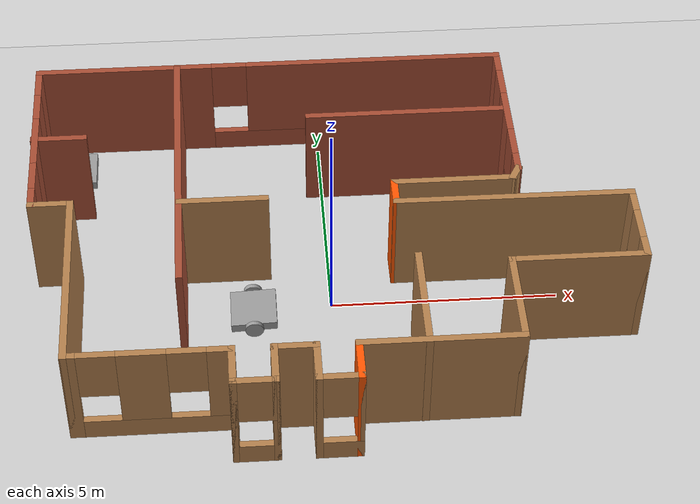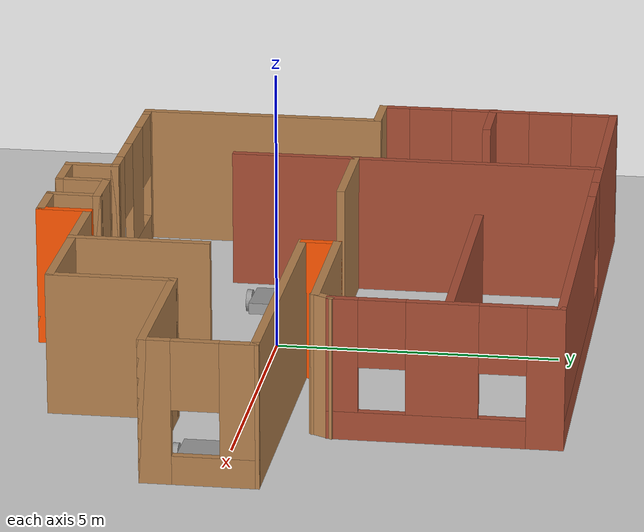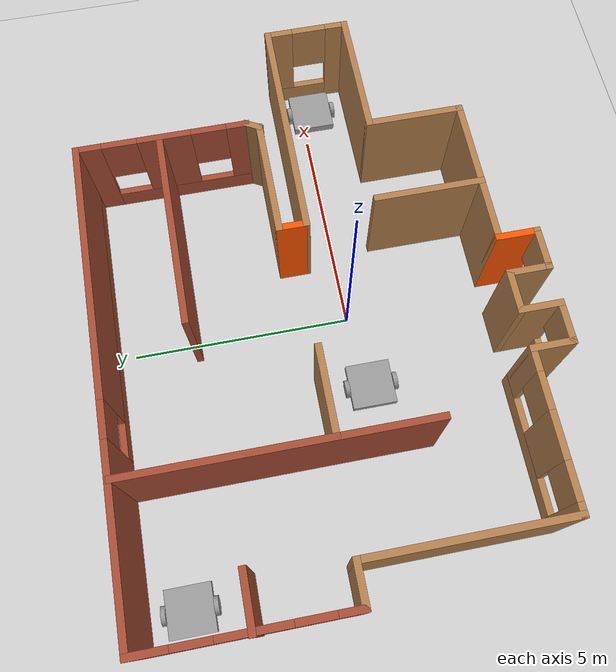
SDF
<sdf version="1.6">
 <world name="default">
  <plugin name="hello" filename="libhello.so"/>
  <light name="sun" type="directional">
   <pose>0 0 10 0 -0 0</pose>
   <diffuse>0.8 0.8 0.8 1</diffuse>
   <specular>0.2 0.2 0.2 1</specular>
   <attenuation>
    <range>1000</range>
    <constant>0.9</constant>
    <linear>0.01</linear>
    <quadratic>0.001</quadratic>
   </attenuation>
   <direction>-0.5 0.1 -0.9</direction>
  </light>
  <model name="ground_plane">
   <static>1</static>
   <link name="link">
    <collision name="collision">
     <geometry><plane><normal>0 0 1</normal><size>100 100</size></plane></geometry>
     <surface>
      <contact><collide_bitmask>65535</collide_bitmask></contact>
      <friction><ode><mu>100</mu><mu2>50</mu2></ode></friction>
     </surface>
    </collision>
    <visual name="visual">
     <cast_shadows>0</cast_shadows>
     <geometry><plane><normal>0 0 1</normal><size>100 100</size></plane></geometry>
     <material>
      <script><uri>file://media/materials/scripts/gazebo.material</uri><name>Gazebo/Grey</name></script>
     </material>
    </visual>
   </link>
  </model>
  <gravity>0 0 -9.8</gravity>
  <magnetic_field>6e-06 2.3e-05 -4.2e-05</magnetic_field>
  <atmosphere type="adiabatic"/>
  <physics name="default_physics" default="0" type="ode">
   <max_step_size>0.001</max_step_size>
   <real_time_factor>1</real_time_factor>
   <real_time_update_rate>1000</real_time_update_rate>
  </physics>
  <scene><ambient>0.4 0.4 0.4 1</ambient><background>0.7 0.7 0.7 1</background><shadows>1</shadows></scene>
  <spherical_coordinates>
   <surface_model>EARTH_WGS84</surface_model>
   <latitude_deg>0</latitude_deg>
   <longitude_deg>0</longitude_deg>
   <elevation>0</elevation>
   <heading_deg>0</heading_deg>
  </spherical_coordinates>
  <model name="Building">
   <pose>0.056223 0.63011 0 0 -0 0</pose>
   <link name="Wall_10">
    <collision name="Wall_10_Collision">
     <geometry><box><size>1 0.15 2.5</size></box></geometry>
     <pose>0 0 1.25 0 -0 0</pose>
    </collision>
    <visual name="Wall_10_Visual">
     <pose>0 0 1.25 0 -0 0</pose>
     <geometry><box><size>1 0.15 2.5</size></box></geometry>
     <material>
      <script><uri>file://media/materials/scripts/gazebo.material</uri><name>Gazebo/Grey</name></script>
      <ambient>1 0.333333 0 1</ambient>
     </material>
     <meta><layer>0</layer></meta>
    </visual>
    <pose>0.287386 -4.35 0 0 -0 1.5708</pose>
   </link>
   <link name="Wall_12">
    <collision name="Wall_12_Collision">
     <geometry><box><size>3.5 0.15 2.5</size></box></geometry>
     <pose>0 0 1.25 0 -0 0</pose>
    </collision>
    <visual name="Wall_12_Visual">
     <pose>0 0 1.25 0 -0 0</pose>
     <geometry><box><size>3.5 0.15 2.5</size></box></geometry>
     <material>
      <script><uri>file://media/materials/scripts/gazebo.material</uri><name>Gazebo/Wood</name></script>
      <ambient>1 0.333333 0 1</ambient>
     </material>
     <meta><layer>0</layer></meta>
    </visual>
    <pose>1.96239 -3.925 0 0 -0 0</pose>
   </link>
   <link name="Wall_13">
    <collision name="Wall_13_Collision">
     <geometry><box><size>2.25 0.15 2.5</size></box></geometry>
     <pose>0 0 1.25 0 -0 0</pose>
    </collision>
    <visual name="Wall_13_Visual">
     <pose>0 0 1.25 0 -0 0</pose>
     <geometry><box><size>2.25 0.15 2.5</size></box></geometry>
     <material>
      <script><uri>file://media/materials/scripts/gazebo.material</uri><name>Gazebo/Wood</name></script>
      <ambient>1 0.333333 0 1</ambient>
     </material>
     <meta><layer>0</layer></meta>
    </visual>
    <pose>3.63739 -2.875 0 0 -0 1.5708</pose>
   </link>
   <link name="Wall_14">
    <collision name="Wall_14_Collision">
     <geometry><box><size>3 0.15 2.5</size></box></geometry>
     <pose>0 0 1.25 0 -0 0</pose>
    </collision>
    <visual name="Wall_14_Visual">
     <pose>0 0 1.25 0 -0 0</pose>
     <geometry><box><size>3 0.15 2.5</size></box></geometry>
     <material>
      <script><uri>file://media/materials/scripts/gazebo.material</uri><name>Gazebo/Wood</name></script>
      <ambient>1 0.333333 0 1</ambient>
     </material>
     <meta><layer>0</layer></meta>
    </visual>
    <pose>5.06239 -1.825 0 0 -0 0</pose>
   </link>
   <link name="Wall_15">
    <pose>6.48739 -0.9 0 0 -0 1.5708</pose>
    <visual name="Wall_15_Visual_0">
     <pose>-0.725722 0 1.25 0 -0 0</pose>
     <geometry><box><size>0.548555 0.15 2.5</size></box></geometry>
     <material>
      <script><uri>file://media/materials/scripts/gazebo.material</uri><name>Gazebo/Wood</name></script>
      <ambient>1 0.333333 0 1</ambient>
     </material>
     <meta><layer>0</layer></meta>
    </visual>
    <collision name="Wall_15_Collision_0">
     <geometry><box><size>0.548555 0.15 2.5</size></box></geometry>
     <pose>-0.725722 0 1.25 0 -0 0</pose>
    </collision>
    <visual name="Wall_15_Visual_1">
     <pose>0.274278 0 0.25 0 -0 0</pose>
     <geometry><box><size>1.45145 0.15 0.5</size></box></geometry>
     <material>
      <script><uri>file://media/materials/scripts/gazebo.material</uri><name>Gazebo/Wood</name></script>
      <ambient>1 0.333333 0 1</ambient>
     </material>
     <meta><layer>0</layer></meta>
    </visual>
    <collision name="Wall_15_Collision_1">
     <geometry><box><size>1.45145 0.15 0.5</size></box></geometry>
     <pose>0.274278 0 0.25 0 -0 0</pose>
    </collision>
    <visual name="Wall_15_Visual_2">
     <pose>0.674278 0 1.5 0 -0 0</pose>
     <geometry><box><size>0.651445 0.15 2</size></box></geometry>
     <material>
      <script><uri>file://media/materials/scripts/gazebo.material</uri><name>Gazebo/Wood</name></script>
      <ambient>1 0.333333 0 1</ambient>
     </material>
     <meta><layer>0</layer></meta>
    </visual>
    <collision name="Wall_15_Collision_2">
     <geometry><box><size>0.651445 0.15 2</size></box></geometry>
     <pose>0.674278 0 1.5 0 -0 0</pose>
    </collision>
    <visual name="Wall_15_Visual_3">
     <pose>-0.051445 0 1.9 0 -0 0</pose>
     <geometry><box><size>0.8 0.15 1.2</size></box></geometry>
     <material>
      <script><uri>file://media/materials/scripts/gazebo.material</uri><name>Gazebo/Wood</name></script>
      <ambient>1 0.333333 0 1</ambient>
     </material>
     <meta><layer>0</layer></meta>
    </visual>
    <collision name="Wall_15_Collision_3">
     <geometry><box><size>0.8 0.15 1.2</size></box></geometry>
     <pose>-0.051445 0 1.9 0 -0 0</pose>
    </collision>
   </link>
   <link name="Wall_16">
    <collision name="Wall_16_Collision">
     <geometry><box><size>5.25 0.15 2.5</size></box></geometry>
     <pose>0 0 1.25 0 -0 0</pose>
    </collision>
    <visual name="Wall_16_Visual">
     <pose>0 0 1.25 0 -0 0</pose>
     <geometry><box><size>5.25 0.15 2.5</size></box></geometry>
     <material>
      <script><uri>file://media/materials/scripts/gazebo.material</uri><name>Gazebo/Wood</name></script>
      <ambient>1 0.333333 0 1</ambient>
     </material>
     <meta><layer>0</layer></meta>
    </visual>
    <pose>3.93739 0.0365 0 0 -0 3.13708</pose>
   </link>
   <link name="Wall_2">
    <collision name="Wall_2_Collision">
     <geometry><box><size>4.5 0.15 2.5</size></box></geometry>
     <pose>0 0 1.25 0 -0 0</pose>
    </collision>
    <visual name="Wall_2_Visual">
     <pose>0 0 1.25 0 -0 0</pose>
     <geometry><box><size>4.5 0.15 2.5</size></box></geometry>
     <material>
      <script><uri>file://media/materials/scripts/gazebo.material</uri><name>Gazebo/Wood</name></script>
      <ambient>0 0 0.498039 1</ambient>
     </material>
     <meta><layer>0</layer></meta>
    </visual>
    <pose>-5.61261 -1.75 0 0 0 -1.5708</pose>
   </link>
   <link name="Wall_21">
    <collision name="Wall_21_Collision">
     <geometry><box><size>0.75 0.15 2.5</size></box></geometry>
     <pose>0 0 1.25 0 -0 0</pose>
    </collision>
    <visual name="Wall_21_Visual">
     <pose>0 0 1.25 0 -0 0</pose>
     <geometry><box><size>0.75 0.15 2.5</size></box></geometry>
     <material>
      <script><uri>file://media/materials/scripts/gazebo.material</uri><name>Gazebo/Grey</name></script>
      <ambient>1 0.333333 0 1</ambient>
     </material>
     <meta><layer>0</layer></meta>
    </visual>
    <pose>1.38739 0.348 0 0 -0 1.5708</pose>
   </link>
   <link name="Wall_25">
    <collision name="Wall_25_Collision">
     <geometry><box><size>1 0.15 2.5</size></box></geometry>
     <pose>0 0 1.25 0 -0 0</pose>
    </collision>
    <visual name="Wall_25_Visual">
     <pose>0 0 1.25 0 -0 0</pose>
     <geometry><box><size>1 0.15 2.5</size></box></geometry>
     <material>
      <script><uri>file://media/materials/scripts/gazebo.material</uri><name>Gazebo/Wood</name></script>
      <ambient>0.996078 0.47451 0.0196078 1</ambient>
     </material>
     <meta><layer>0</layer></meta>
    </visual>
    <pose>-6.03761 0.425 0 0 -0 3.14159</pose>
   </link>
   <link name="Wall_26">
    <pose>-6.46261 2.6 0 0 -0 1.5708</pose>
    <visual name="Wall_26_Visual_0">
     <pose>-1.95691 0 1.25 0 -0 0</pose>
     <geometry><box><size>0.586172 0.15 2.5</size></box></geometry>
     <material>
      <script><uri>file://media/materials/scripts/gazebo.material</uri><name>Gazebo/Bricks</name></script>
      <ambient>0 0 0.498039 1</ambient>
     </material>
     <meta><layer>0</layer></meta>
    </visual>
    <collision name="Wall_26_Collision_0">
     <geometry><box><size>0.586172 0.15 2.5</size></box></geometry>
     <pose>-1.95691 0 1.25 0 -0 0</pose>
    </collision>
    <visual name="Wall_26_Visual_1">
     <pose>0.293086 0 0.25 0 -0 0</pose>
     <geometry><box><size>3.91383 0.15 0.5</size></box></geometry>
     <material>
      <script><uri>file://media/materials/scripts/gazebo.material</uri><name>Gazebo/Bricks</name></script>
      <ambient>0 0 0.498039 1</ambient>
     </material>
     <meta><layer>0</layer></meta>
    </visual>
    <collision name="Wall_26_Collision_1">
     <geometry><box><size>3.91383 0.15 0.5</size></box></geometry>
     <pose>0.293086 0 0.25 0 -0 0</pose>
    </collision>
    <visual name="Wall_26_Visual_2">
     <pose>-0.133319 0 1.5 0 -0 0</pose>
     <geometry><box><size>1.46102 0.15 2</size></box></geometry>
     <material>
      <script><uri>file://media/materials/scripts/gazebo.material</uri><name>Gazebo/Bricks</name></script>
      <ambient>0 0 0.498039 1</ambient>
     </material>
     <meta><layer>0</layer></meta>
    </visual>
    <collision name="Wall_26_Collision_2">
     <geometry><box><size>1.46102 0.15 2</size></box></geometry>
     <pose>-0.133319 0 1.5 0 -0 0</pose>
    </collision>
    <visual name="Wall_26_Visual_3">
     <pose>1.8236 0 1.5 0 -0 0</pose>
     <geometry><box><size>0.852811 0.15 2</size></box></geometry>
     <material>
      <script><uri>file://media/materials/scripts/gazebo.material</uri><name>Gazebo/Bricks</name></script>
      <ambient>0 0 0.498039 1</ambient>
     </material>
     <meta><layer>0</layer></meta>
    </visual>
    <collision name="Wall_26_Collision_3">
     <geometry><box><size>0.852811 0.15 2</size></box></geometry>
     <pose>1.8236 0 1.5 0 -0 0</pose>
    </collision>
    <visual name="Wall_26_Visual_4">
     <pose>-1.26383 0 1.9 0 -0 0</pose>
     <geometry><box><size>0.8 0.15 1.2</size></box></geometry>
     <material>
      <script><uri>file://media/materials/scripts/gazebo.material</uri><name>Gazebo/Bricks</name></script>
      <ambient>0 0 0.498039 1</ambient>
     </material>
     <meta><layer>0</layer></meta>
    </visual>
    <collision name="Wall_26_Collision_4">
     <geometry><box><size>0.8 0.15 1.2</size></box></geometry>
     <pose>-1.26383 0 1.9 0 -0 0</pose>
    </collision>
    <visual name="Wall_26_Visual_5">
     <pose>0.997189 0 1.9 0 -0 0</pose>
     <geometry><box><size>0.8 0.15 1.2</size></box></geometry>
     <material>
      <script><uri>file://media/materials/scripts/gazebo.material</uri><name>Gazebo/Bricks</name></script>
      <ambient>0 0 0.498039 1</ambient>
     </material>
     <meta><layer>0</layer></meta>
    </visual>
    <collision name="Wall_26_Collision_5">
     <geometry><box><size>0.8 0.15 1.2</size></box></geometry>
     <pose>0.997189 0 1.9 0 -0 0</pose>
    </collision>
   </link>
   <link name="Wall_27">
    <pose>-1.16261 4.775 0 0 -0 0</pose>
    <visual name="Wall_27_Visual_0">
     <pose>-3.35553 0 1.25 0 -0 0</pose>
     <geometry><box><size>4.03895 0.15 2.5</size></box></geometry>
     <material>
      <script><uri>file://media/materials/scripts/gazebo.material</uri><name>Gazebo/Bricks</name></script>
      <ambient>0.996078 0.47451 0.0196078 1</ambient>
     </material>
     <meta><layer>0</layer></meta>
    </visual>
    <collision name="Wall_27_Collision_0">
     <geometry><box><size>4.03895 0.15 2.5</size></box></geometry>
     <pose>-3.35553 0 1.25 0 -0 0</pose>
    </collision>
    <visual name="Wall_27_Visual_1">
     <pose>2.01947 0 0.25 0 -0 0</pose>
     <geometry><box><size>6.71105 0.15 0.5</size></box></geometry>
     <material>
      <script><uri>file://media/materials/scripts/gazebo.material</uri><name>Gazebo/Bricks</name></script>
      <ambient>0.996078 0.47451 0.0196078 1</ambient>
     </material>
     <meta><layer>0</layer></meta>
    </visual>
    <collision name="Wall_27_Collision_1">
     <geometry><box><size>6.71105 0.15 0.5</size></box></geometry>
     <pose>2.01947 0 0.25 0 -0 0</pose>
    </collision>
    <visual name="Wall_27_Visual_2">
     <pose>2.41947 0 1.5 0 -0 0</pose>
     <geometry><box><size>5.91105 0.15 2</size></box></geometry>
     <material>
      <script><uri>file://media/materials/scripts/gazebo.material</uri><name>Gazebo/Bricks</name></script>
      <ambient>0.996078 0.47451 0.0196078 1</ambient>
     </material>
     <meta><layer>0</layer></meta>
    </visual>
    <collision name="Wall_27_Collision_2">
     <geometry><box><size>5.91105 0.15 2</size></box></geometry>
     <pose>2.41947 0 1.5 0 -0 0</pose>
    </collision>
    <visual name="Wall_27_Visual_3">
     <pose>-0.936052 0 1.9 0 -0 0</pose>
     <geometry><box><size>0.8 0.15 1.2</size></box></geometry>
     <material>
      <script><uri>file://media/materials/scripts/gazebo.material</uri><name>Gazebo/Bricks</name></script>
      <ambient>0.996078 0.47451 0.0196078 1</ambient>
     </material>
     <meta><layer>0</layer></meta>
    </visual>
    <collision name="Wall_27_Collision_3">
     <geometry><box><size>0.8 0.15 1.2</size></box></geometry>
     <pose>-0.936052 0 1.9 0 -0 0</pose>
    </collision>
   </link>
   <link name="Wall_28">
    <pose>4.13739 2.85 0 0 0 -1.5708</pose>
    <visual name="Wall_28_Visual_0">
     <pose>-1.67999 0 1.25 0 -0 0</pose>
     <geometry><box><size>0.640009 0.15 2.5</size></box></geometry>
     <material>
      <script><uri>file://media/materials/scripts/gazebo.material</uri><name>Gazebo/Bricks</name></script>
      <ambient>1 0.333333 0 1</ambient>
     </material>
     <meta><layer>0</layer></meta>
    </visual>
    <collision name="Wall_28_Collision_0">
     <geometry><box><size>0.640009 0.15 2.5</size></box></geometry>
     <pose>-1.67999 0 1.25 0 -0 0</pose>
    </collision>
    <visual name="Wall_28_Visual_1">
     <pose>0.320005 0 0.25 0 -0 0</pose>
     <geometry><box><size>3.35999 0.15 0.5</size></box></geometry>
     <material>
      <script><uri>file://media/materials/scripts/gazebo.material</uri><name>Gazebo/Bricks</name></script>
      <ambient>1 0.333333 0 1</ambient>
     </material>
     <meta><layer>0</layer></meta>
    </visual>
    <collision name="Wall_28_Collision_1">
     <geometry><box><size>3.35999 0.15 0.5</size></box></geometry>
     <pose>0.320005 0 0.25 0 -0 0</pose>
    </collision>
    <visual name="Wall_28_Visual_2">
     <pose>0.050817 0 1.5 0 -0 0</pose>
     <geometry><box><size>1.22161 0.15 2</size></box></geometry>
     <material>
      <script><uri>file://media/materials/scripts/gazebo.material</uri><name>Gazebo/Bricks</name></script>
      <ambient>1 0.333333 0 1</ambient>
     </material>
     <meta><layer>0</layer></meta>
    </visual>
    <collision name="Wall_28_Collision_2">
     <geometry><box><size>1.22161 0.15 2</size></box></geometry>
     <pose>0.050817 0 1.5 0 -0 0</pose>
    </collision>
    <visual name="Wall_28_Visual_3">
     <pose>1.73081 0 1.5 0 -0 0</pose>
     <geometry><box><size>0.538376 0.15 2</size></box></geometry>
     <material>
      <script><uri>file://media/materials/scripts/gazebo.material</uri><name>Gazebo/Bricks</name></script>
      <ambient>1 0.333333 0 1</ambient>
     </material>
     <meta><layer>0</layer></meta>
    </visual>
    <collision name="Wall_28_Collision_3">
     <geometry><box><size>0.538376 0.15 2</size></box></geometry>
     <pose>1.73081 0 1.5 0 -0 0</pose>
    </collision>
    <visual name="Wall_28_Visual_4">
     <pose>-0.959991 0 1.9 0 -0 0</pose>
     <geometry><box><size>0.8 0.15 1.2</size></box></geometry>
     <material>
      <script><uri>file://media/materials/scripts/gazebo.material</uri><name>Gazebo/Bricks</name></script>
      <ambient>1 0.333333 0 1</ambient>
     </material>
     <meta><layer>0</layer></meta>
    </visual>
    <collision name="Wall_28_Collision_4">
     <geometry><box><size>0.8 0.15 1.2</size></box></geometry>
     <pose>-0.959991 0 1.9 0 -0 0</pose>
    </collision>
    <visual name="Wall_28_Visual_5">
     <pose>1.06162 0 1.9 0 -0 0</pose>
     <geometry><box><size>0.8 0.15 1.2</size></box></geometry>
     <material>
      <script><uri>file://media/materials/scripts/gazebo.material</uri><name>Gazebo/Bricks</name></script>
      <ambient>1 0.333333 0 1</ambient>
     </material>
     <meta><layer>0</layer></meta>
    </visual>
    <collision name="Wall_28_Collision_5">
     <geometry><box><size>0.8 0.15 1.2</size></box></geometry>
     <pose>1.06162 0 1.9 0 -0 0</pose>
    </collision>
   </link>
   <link name="Wall_3">
    <pose>-3.93761 -3.925 0 0 -0 0</pose>
    <visual name="Wall_3_Visual_0">
     <pose>-1.59194 0 1.25 0 -0 0</pose>
     <geometry><box><size>0.316126 0.15 2.5</size></box></geometry>
     <material>
      <script><uri>file://media/materials/scripts/gazebo.material</uri><name>Gazebo/Wood</name></script>
      <ambient>0 0 0.498039 1</ambient>
     </material>
     <meta><layer>0</layer></meta>
    </visual>
    <collision name="Wall_3_Collision_0">
     <geometry><box><size>0.316126 0.15 2.5</size></box></geometry>
     <pose>-1.59194 0 1.25 0 -0 0</pose>
    </collision>
    <visual name="Wall_3_Visual_1">
     <pose>0.158063 0 0.25 0 -0 0</pose>
     <geometry><box><size>3.18387 0.15 0.5</size></box></geometry>
     <material>
      <script><uri>file://media/materials/scripts/gazebo.material</uri><name>Gazebo/Wood</name></script>
      <ambient>0 0 0.498039 1</ambient>
     </material>
     <meta><layer>0</layer></meta>
    </visual>
    <collision name="Wall_3_Collision_1">
     <geometry><box><size>3.18387 0.15 0.5</size></box></geometry>
     <pose>0.158063 0 0.25 0 -0 0</pose>
    </collision>
    <visual name="Wall_3_Visual_2">
     <pose>-0.129467 0 1.5 0 -0 0</pose>
     <geometry><box><size>1.00881 0.15 2</size></box></geometry>
     <material>
      <script><uri>file://media/materials/scripts/gazebo.material</uri><name>Gazebo/Wood</name></script>
      <ambient>0 0 0.498039 1</ambient>
     </material>
     <meta><layer>0</layer></meta>
    </visual>
    <collision name="Wall_3_Collision_2">
     <geometry><box><size>1.00881 0.15 2</size></box></geometry>
     <pose>-0.129467 0 1.5 0 -0 0</pose>
    </collision>
    <visual name="Wall_3_Visual_3">
     <pose>1.46247 0 1.5 0 -0 0</pose>
     <geometry><box><size>0.57506 0.15 2</size></box></geometry>
     <material>
      <script><uri>file://media/materials/scripts/gazebo.material</uri><name>Gazebo/Wood</name></script>
      <ambient>0 0 0.498039 1</ambient>
     </material>
     <meta><layer>0</layer></meta>
    </visual>
    <collision name="Wall_3_Collision_3">
     <geometry><box><size>0.57506 0.15 2</size></box></geometry>
     <pose>1.46247 0 1.5 0 -0 0</pose>
    </collision>
    <visual name="Wall_3_Visual_4">
     <pose>-1.03387 0 1.9 0 -0 0</pose>
     <geometry><box><size>0.8 0.15 1.2</size></box></geometry>
     <material>
      <script><uri>file://media/materials/scripts/gazebo.material</uri><name>Gazebo/Wood</name></script>
      <ambient>0 0 0.498039 1</ambient>
     </material>
     <meta><layer>0</layer></meta>
    </visual>
    <collision name="Wall_3_Collision_4">
     <geometry><box><size>0.8 0.15 1.2</size></box></geometry>
     <pose>-1.03387 0 1.9 0 -0 0</pose>
    </collision>
    <visual name="Wall_3_Visual_5">
     <pose>0.77494 0 1.9 0 -0 0</pose>
     <geometry><box><size>0.8 0.15 1.2</size></box></geometry>
     <material>
      <script><uri>file://media/materials/scripts/gazebo.material</uri><name>Gazebo/Wood</name></script>
      <ambient>0 0 0.498039 1</ambient>
     </material>
     <meta><layer>0</layer></meta>
    </visual>
    <collision name="Wall_3_Collision_5">
     <geometry><box><size>0.8 0.15 1.2</size></box></geometry>
     <pose>0.77494 0 1.9 0 -0 0</pose>
    </collision>
   </link>
   <link name="Wall_30">
    <collision name="Wall_30_Collision">
     <geometry><box><size>2.75 0.15 2.5</size></box></geometry>
     <pose>0 0 1.25 0 -0 0</pose>
    </collision>
    <visual name="Wall_30_Visual">
     <pose>0 0 1.25 0 -0 0</pose>
     <geometry><box><size>2.75 0.15 2.5</size></box></geometry>
     <material>
      <script><uri>file://media/materials/scripts/gazebo.material</uri><name>Gazebo/Wood</name></script>
      <ambient>1 0.333333 0 1</ambient>
     </material>
     <meta><layer>0</layer></meta>
    </visual>
    <pose>2.68739 0.648 0 0 -0 0</pose>
   </link>
   <link name="Wall_31">
    <collision name="Wall_31_Collision">
     <geometry><box><size>0.465006 0.15 2.5</size></box></geometry>
     <pose>0 0 1.25 0 -0 0</pose>
    </collision>
    <visual name="Wall_31_Visual">
     <pose>0 0 1.25 0 -0 0</pose>
     <geometry><box><size>0.465006 0.15 2.5</size></box></geometry>
     <material>
      <script><uri>file://media/materials/scripts/gazebo.material</uri><name>Gazebo/Wood</name></script>
      <ambient>1 0.333333 0 1</ambient>
     </material>
     <meta><layer>0</layer></meta>
    </visual>
    <pose>4.06239 0.7865 0 0 -0 1.07449</pose>
   </link>
   <link name="Wall_33">
    <collision name="Wall_33_Collision">
     <geometry><box><size>6.75 0.15 2.5</size></box></geometry>
     <pose>0 0 1.25 0 -0 0</pose>
    </collision>
    <visual name="Wall_33_Visual">
     <pose>0 0 1.25 0 -0 0</pose>
     <geometry><box><size>6.75 0.15 2.5</size></box></geometry>
     <material>
      <script><uri>file://media/materials/scripts/gazebo.material</uri><name>Gazebo/Bricks</name></script>
      <ambient>0 0 0.498039 1</ambient>
     </material>
     <meta><layer>0</layer></meta>
    </visual>
    <pose>-3.29568 1.441 0 0 0 -1.5708</pose>
   </link>
   <link name="Wall_35">
    <collision name="Wall_35_Collision">
     <geometry><box><size>4.5 0.15 2.5</size></box></geometry>
     <pose>0 0 1.25 0 -0 0</pose>
    </collision>
    <visual name="Wall_35_Visual">
     <pose>0 0 1.25 0 -0 0</pose>
     <geometry><box><size>4.5 0.15 2.5</size></box></geometry>
     <material>
      <script><uri>file://media/materials/scripts/gazebo.material</uri><name>Gazebo/Bricks</name></script>
      <ambient>0 0 0.498039 1</ambient>
     </material>
     <meta><layer>0</layer></meta>
    </visual>
    <pose>1.83195 2.90558 0 0 -0 0</pose>
   </link>
   <link name="Wall_37">
    <collision name="Wall_37_Collision">
     <geometry><box><size>1.25 0.15 2.5</size></box></geometry>
     <pose>0 0 1.25 0 -0 0</pose>
    </collision>
    <visual name="Wall_37_Visual">
     <pose>0 0 1.25 0 -0 0</pose>
     <geometry><box><size>1.25 0.15 2.5</size></box></geometry>
     <material>
      <script><uri>file://media/materials/scripts/gazebo.material</uri><name>Gazebo/Bricks</name></script>
      <ambient>0 0 0.498039 1</ambient>
     </material>
     <meta><layer>0</layer></meta>
    </visual>
    <pose>-5.9377 2.50658 0 0 -0 0</pose>
   </link>
   <link name="Wall_39">
    <collision name="Wall_39_Collision">
     <geometry><box><size>2.5 0.15 2.5</size></box></geometry>
     <pose>0 0 1.25 0 -0 0</pose>
    </collision>
    <visual name="Wall_39_Visual">
     <pose>0 0 1.25 0 -0 0</pose>
     <geometry><box><size>2.5 0.15 2.5</size></box></geometry>
     <material>
      <script><uri>file://media/materials/scripts/gazebo.material</uri><name>Gazebo/Wood</name></script>
      <ambient>1 0.333333 0 1</ambient>
     </material>
     <meta><layer>0</layer></meta>
    </visual>
    <pose>1.70516 -2.75567 0 0 -0 1.5708</pose>
   </link>
   <link name="Wall_4">
    <collision name="Wall_4_Collision">
     <geometry><box><size>1 0.15 2.5</size></box></geometry>
     <pose>0 0 1.25 0 -0 0</pose>
    </collision>
    <visual name="Wall_4_Visual">
     <pose>0 0 1.25 0 -0 0</pose>
     <geometry><box><size>1 0.15 2.5</size></box></geometry>
     <material>
      <script><uri>file://media/materials/scripts/gazebo.material</uri><name>Gazebo/Wood</name></script>
      <ambient>1 0.333333 0 1</ambient>
     </material>
     <meta><layer>0</layer></meta>
    </visual>
    <pose>-2.26261 -4.35 0 0 0 -1.5708</pose>
   </link>
   <link name="Wall_41">
    <collision name="Wall_41_Collision">
     <geometry><box><size>2 0.15 2.5</size></box></geometry>
     <pose>0 0 1.25 0 -0 0</pose>
    </collision>
    <visual name="Wall_41_Visual">
     <pose>0 0 1.25 0 -0 0</pose>
     <geometry><box><size>2 0.15 2.5</size></box></geometry>
     <material>
      <script><uri>file://media/materials/scripts/gazebo.material</uri><name>Gazebo/Wood</name></script>
      <ambient>1 1 1 1</ambient>
     </material>
     <meta><layer>0</layer></meta>
    </visual>
    <pose>-2.34408 0.325365 0 0 -0 0</pose>
   </link>
   <link name="Wall_5">
    <pose>-1.83761 -4.775 0 0 -0 0</pose>
    <visual name="Wall_5_Visual_0">
     <pose>-0.434225 0 1.25 0 -0 0</pose>
     <geometry><box><size>0.13155 0.15 2.5</size></box></geometry>
     <material>
      <script><uri>file://media/materials/scripts/gazebo.material</uri><name>Gazebo/Wood</name></script>
      <ambient>1 0.333333 0 1</ambient>
     </material>
     <meta><layer>0</layer></meta>
    </visual>
    <collision name="Wall_5_Collision_0">
     <geometry><box><size>0.13155 0.15 2.5</size></box></geometry>
     <pose>-0.434225 0 1.25 0 -0 0</pose>
    </collision>
    <visual name="Wall_5_Visual_1">
     <pose>0.065775 0 0.25 0 -0 0</pose>
     <geometry><box><size>0.86845 0.15 0.5</size></box></geometry>
     <material>
      <script><uri>file://media/materials/scripts/gazebo.material</uri><name>Gazebo/Wood</name></script>
      <ambient>1 0.333333 0 1</ambient>
     </material>
     <meta><layer>0</layer></meta>
    </visual>
    <collision name="Wall_5_Collision_1">
     <geometry><box><size>0.86845 0.15 0.5</size></box></geometry>
     <pose>0.065775 0 0.25 0 -0 0</pose>
    </collision>
    <visual name="Wall_5_Visual_2">
     <pose>0.465775 0 1.5 0 -0 0</pose>
     <geometry><box><size>0.06845 0.15 2</size></box></geometry>
     <material>
      <script><uri>file://media/materials/scripts/gazebo.material</uri><name>Gazebo/Wood</name></script>
      <ambient>1 0.333333 0 1</ambient>
     </material>
     <meta><layer>0</layer></meta>
    </visual>
    <collision name="Wall_5_Collision_2">
     <geometry><box><size>0.06845 0.15 2</size></box></geometry>
     <pose>0.465775 0 1.5 0 -0 0</pose>
    </collision>
    <visual name="Wall_5_Visual_3">
     <pose>0.03155 0 1.9 0 -0 0</pose>
     <geometry><box><size>0.8 0.15 1.2</size></box></geometry>
     <material>
      <script><uri>file://media/materials/scripts/gazebo.material</uri><name>Gazebo/Wood</name></script>
      <ambient>1 0.333333 0 1</ambient>
     </material>
     <meta><layer>0</layer></meta>
    </visual>
    <collision name="Wall_5_Collision_3">
     <geometry><box><size>0.8 0.15 1.2</size></box></geometry>
     <pose>0.03155 0 1.9 0 -0 0</pose>
    </collision>
   </link>
   <link name="Wall_6">
    <collision name="Wall_6_Collision">
     <geometry><box><size>1 0.15 2.5</size></box></geometry>
     <pose>0 0 1.25 0 -0 0</pose>
    </collision>
    <visual name="Wall_6_Visual">
     <pose>0 0 1.25 0 -0 0</pose>
     <geometry><box><size>1 0.15 2.5</size></box></geometry>
     <material>
      <script><uri>file://media/materials/scripts/gazebo.material</uri><name>Gazebo/Wood</name></script>
      <ambient>1 0.333333 0 1</ambient>
     </material>
     <meta><layer>0</layer></meta>
    </visual>
    <pose>-1.41261 -4.35 0 0 -0 1.5708</pose>
   </link>
   <link name="Wall_7">
    <collision name="Wall_7_Collision">
     <geometry><box><size>1 0.15 2.5</size></box></geometry>
     <pose>0 0 1.25 0 -0 0</pose>
    </collision>
    <visual name="Wall_7_Visual">
     <pose>0 0 1.25 0 -0 0</pose>
     <geometry><box><size>1 0.15 2.5</size></box></geometry>
     <material>
      <script><uri>file://media/materials/scripts/gazebo.material</uri><name>Gazebo/Wood</name></script>
      <ambient>1 0.333333 0 1</ambient>
     </material>
     <meta><layer>0</layer></meta>
    </visual>
    <pose>-0.987614 -3.925 0 0 -0 0</pose>
   </link>
   <link name="Wall_8">
    <collision name="Wall_8_Collision">
     <geometry><box><size>1 0.15 2.5</size></box></geometry>
     <pose>0 0 1.25 0 -0 0</pose>
    </collision>
    <visual name="Wall_8_Visual">
     <pose>0 0 1.25 0 -0 0</pose>
     <geometry><box><size>1 0.15 2.5</size></box></geometry>
     <material>
      <script><uri>file://media/materials/scripts/gazebo.material</uri><name>Gazebo/Wood</name></script>
      <ambient>1 0.333333 0 1</ambient>
     </material>
     <meta><layer>0</layer></meta>
    </visual>
    <pose>-0.562614 -4.35 0 0 0 -1.5708</pose>
   </link>
   <link name="Wall_9">
    <pose>-0.137614 -4.775 0 0 -0 0</pose>
    <visual name="Wall_9_Visual_0">
     <pose>-0.446319 0 1.25 0 -0 0</pose>
     <geometry><box><size>0.107362 0.15 2.5</size></box></geometry>
     <material>
      <script><uri>file://media/materials/scripts/gazebo.material</uri><name>Gazebo/Wood</name></script>
      <ambient>1 0.333333 0 1</ambient>
     </material>
     <meta><layer>0</layer></meta>
    </visual>
    <collision name="Wall_9_Collision_0">
     <geometry><box><size>0.107362 0.15 2.5</size></box></geometry>
     <pose>-0.446319 0 1.25 0 -0 0</pose>
    </collision>
    <visual name="Wall_9_Visual_1">
     <pose>0.053681 0 0.25 0 -0 0</pose>
     <geometry><box><size>0.892638 0.15 0.5</size></box></geometry>
     <material>
      <script><uri>file://media/materials/scripts/gazebo.material</uri><name>Gazebo/Wood</name></script>
      <ambient>1 0.333333 0 1</ambient>
     </material>
     <meta><layer>0</layer></meta>
    </visual>
    <collision name="Wall_9_Collision_1">
     <geometry><box><size>0.892638 0.15 0.5</size></box></geometry>
     <pose>0.053681 0 0.25 0 -0 0</pose>
    </collision>
    <visual name="Wall_9_Visual_2">
     <pose>0.453681 0 1.5 0 -0 0</pose>
     <geometry><box><size>0.092638 0.15 2</size></box></geometry>
     <material>
      <script><uri>file://media/materials/scripts/gazebo.material</uri><name>Gazebo/Wood</name></script>
      <ambient>1 0.333333 0 1</ambient>
     </material>
     <meta><layer>0</layer></meta>
    </visual>
    <collision name="Wall_9_Collision_2">
     <geometry><box><size>0.092638 0.15 2</size></box></geometry>
     <pose>0.453681 0 1.5 0 -0 0</pose>
    </collision>
    <visual name="Wall_9_Visual_3">
     <pose>0.007362 0 1.9 0 -0 0</pose>
     <geometry><box><size>0.8 0.15 1.2</size></box></geometry>
     <material>
      <script><uri>file://media/materials/scripts/gazebo.material</uri><name>Gazebo/Wood</name></script>
      <ambient>1 0.333333 0 1</ambient>
     </material>
     <meta><layer>0</layer></meta>
    </visual>
    <collision name="Wall_9_Collision_3">
     <geometry><box><size>0.8 0.15 1.2</size></box></geometry>
     <pose>0.007362 0 1.9 0 -0 0</pose>
    </collision>
   </link>
   <static>1</static>
  </model>
  <model name="Robot">
   <link name="link_0">
    <inertial>
     <mass>1</mass>
     <inertia>
      <ixx>0.166667</ixx>
      <ixy>0</ixy>
      <ixz>0</ixz>
      <iyy>0.166667</iyy>
      <iyz>0</iyz>
      <izz>0.166667</izz>
     </inertia>
    </inertial>
    <visual name="visual">
     <geometry><box><size>1 1 0.2</size></box></geometry>
     <material>
      <lighting>1</lighting>
      <script><uri>file://media/materials/scripts/gazebo.material</uri><name>Gazebo/Grey</name></script>
      <shader type="pixel"><normal_map>__default__</normal_map></shader>
      <ambient>0.3 0.3 0.3 1</ambient>
      <diffuse>0.7 0.7 0.7 1</diffuse>
      <specular>0.01 0.01 0.01 1</specular>
      <emissive>0 0 0 1</emissive>
     </material>
    </visual>
    <collision name="collision">
     <geometry><box><size>1 1 0.2</size></box></geometry>
     <surface>
      <friction>
       <ode><mu>1</mu><mu2>1</mu2><fdir1>0 0 0</fdir1><slip1>0</slip1><slip2>0</slip2></ode>
       <torsional>
        <coefficient>1</coefficient>
        <patch_radius>0</patch_radius>
        <surface_radius>0</surface_radius>
        <use_patch_radius>1</use_patch_radius>
        <ode><slip>0</slip></ode>
       </torsional>
      </friction>
      <bounce><restitution_coefficient>0</restitution_coefficient><threshold>1e+06</threshold></bounce>
      <contact>
       <collide_without_contact>0</collide_without_contact>
       <collide_without_contact_bitmask>1</collide_without_contact_bitmask>
       <collide_bitmask>1</collide_bitmask>
       <ode>
        <soft_cfm>0</soft_cfm>
        <soft_erp>0.2</soft_erp>
        <kp>1e+13</kp>
        <kd>1</kd>
        <max_vel>0.01</max_vel>
        <min_depth>0</min_depth>
       </ode>
       <bullet>
        <split_impulse>1</split_impulse>
        <split_impulse_penetration_threshold>-0.01</split_impulse_penetration_threshold>
        <soft_cfm>0</soft_cfm>
        <soft_erp>0.2</soft_erp>
        <kp>1e+13</kp>
        <kd>1</kd>
       </bullet>
      </contact>
     </surface>
    </collision>
   </link>
   <link name="link_1">
    <pose>0 -0.550019 0 1.5707 -0 0</pose>
    <inertial>
     <mass>1</mass>
     <inertia><ixx>0.145833</ixx><ixy>0</ixy><ixz>0</ixz><iyy>0.145833</iyy><iyz>0</iyz><izz>0.125</izz></inertia>
    </inertial>
    <visual name="visual">
     <geometry><cylinder><radius>0.2</radius><length>0.1</length></cylinder></geometry>
     <material>
      <lighting>1</lighting>
      <script><uri>file://media/materials/scripts/gazebo.material</uri><name>Gazebo/Grey</name></script>
      <shader type="pixel"><normal_map>__default__</normal_map></shader>
      <ambient>0.3 0.3 0.3 1</ambient>
      <diffuse>0.7 0.7 0.7 1</diffuse>
      <specular>0.01 0.01 0.01 1</specular>
      <emissive>0 0 0 1</emissive>
     </material>
    </visual>
    <collision name="collision">
     <geometry><cylinder><radius>0.2</radius><length>0.1</length></cylinder></geometry>
     <surface>
      <friction>
       <ode><mu>1</mu><mu2>1</mu2><fdir1>0 0 0</fdir1><slip1>0</slip1><slip2>0</slip2></ode>
       <torsional>
        <coefficient>1</coefficient>
        <patch_radius>0</patch_radius>
        <surface_radius>0</surface_radius>
        <use_patch_radius>1</use_patch_radius>
        <ode><slip>0</slip></ode>
       </torsional>
      </friction>
      <bounce><restitution_coefficient>0</restitution_coefficient><threshold>1e+06</threshold></bounce>
      <contact>
       <collide_without_contact>0</collide_without_contact>
       <collide_without_contact_bitmask>1</collide_without_contact_bitmask>
       <collide_bitmask>1</collide_bitmask>
       <ode>
        <soft_cfm>0</soft_cfm>
        <soft_erp>0.2</soft_erp>
        <kp>1e+13</kp>
        <kd>1</kd>
        <max_vel>0.01</max_vel>
        <min_depth>0</min_depth>
       </ode>
       <bullet>
        <split_impulse>1</split_impulse>
        <split_impulse_penetration_threshold>-0.01</split_impulse_penetration_threshold>
        <soft_cfm>0</soft_cfm>
        <soft_erp>0.2</soft_erp>
        <kp>1e+13</kp>
        <kd>1</kd>
       </bullet>
      </contact>
     </surface>
    </collision>
   </link>
   <link name="link_1_clone">
    <pose>0 0.550019 0 1.5707 -0 0</pose>
    <inertial>
     <mass>1</mass>
     <inertia><ixx>0.145833</ixx><ixy>0</ixy><ixz>0</ixz><iyy>0.145833</iyy><iyz>0</iyz><izz>0.125</izz></inertia>
    </inertial>
    <visual name="visual">
     <geometry><cylinder><radius>0.2</radius><length>0.1</length></cylinder></geometry>
     <material>
      <lighting>1</lighting>
      <script><uri>file://media/materials/scripts/gazebo.material</uri><name>Gazebo/Grey</name></script>
      <shader type="pixel"><normal_map>__default__</normal_map></shader>
      <ambient>0.3 0.3 0.3 1</ambient>
      <diffuse>0.7 0.7 0.7 1</diffuse>
      <specular>0.01 0.01 0.01 1</specular>
      <emissive>0 0 0 1</emissive>
     </material>
    </visual>
    <collision name="collision">
     <geometry><cylinder><radius>0.2</radius><length>0.1</length></cylinder></geometry>
     <surface>
      <friction>
       <ode><mu>1</mu><mu2>1</mu2><fdir1>0 0 0</fdir1><slip1>0</slip1><slip2>0</slip2></ode>
       <torsional>
        <coefficient>1</coefficient>
        <patch_radius>0</patch_radius>
        <surface_radius>0</surface_radius>
        <use_patch_radius>1</use_patch_radius>
        <ode><slip>0</slip></ode>
       </torsional>
      </friction>
      <bounce><restitution_coefficient>0</restitution_coefficient><threshold>1e+06</threshold></bounce>
      <contact>
       <collide_without_contact>0</collide_without_contact>
       <collide_without_contact_bitmask>1</collide_without_contact_bitmask>
       <collide_bitmask>1</collide_bitmask>
       <ode>
        <soft_cfm>0</soft_cfm>
        <soft_erp>0.2</soft_erp>
        <kp>1e+13</kp>
        <kd>1</kd>
        <max_vel>0.01</max_vel>
        <min_depth>0</min_depth>
       </ode>
       <bullet>
        <split_impulse>1</split_impulse>
        <split_impulse_penetration_threshold>-0.01</split_impulse_penetration_threshold>
        <soft_cfm>0</soft_cfm>
        <soft_erp>0.2</soft_erp>
        <kp>1e+13</kp>
        <kd>1</kd>
       </bullet>
      </contact>
     </surface>
    </collision>
   </link>
   <joint name="link_0_JOINT_0" type="revolute">
    <parent>link_0</parent>
    <child>link_1</child>
    <axis>
     <xyz>0 1 0</xyz>
     <use_parent_model_frame>0</use_parent_model_frame>
     <limit>
      <lower>-1.79769e+308</lower>
      <upper>1.79769e+308</upper>
      <effort>-1</effort>
      <velocity>-1</velocity>
     </limit>
     <dynamics>
      <spring_reference>0</spring_reference>
      <spring_stiffness>0</spring_stiffness>
      <damping>0</damping>
     </dynamics>
    </axis>
    <physics>
     <ode><limit><cfm>0</cfm><erp>0.2</erp></limit><suspension><cfm>0</cfm><erp>0.2</erp></suspension></ode>
    </physics>
   </joint>
   <joint name="link_0_JOINT_1" type="revolute">
    <parent>link_0</parent>
    <child>link_1_clone</child>
    <axis>
     <xyz>0 1 0</xyz>
     <use_parent_model_frame>0</use_parent_model_frame>
     <limit>
      <lower>-1.79769e+308</lower>
      <upper>1.79769e+308</upper>
      <effort>-1</effort>
      <velocity>-1</velocity>
     </limit>
     <dynamics>
      <spring_reference>0</spring_reference>
      <spring_stiffness>0</spring_stiffness>
      <damping>0</damping>
     </dynamics>
    </axis>
    <physics>
     <ode><limit><cfm>0</cfm><erp>0.2</erp></limit><suspension><cfm>0</cfm><erp>0.2</erp></suspension></ode>
    </physics>
   </joint>
   <static>0</static>
   <pose>-1.71692 -0.205589 0.199998 3e-06 -0.054291 -0.000604</pose>
  </model>
  <model name="Robot_0">
   <link name="link_0">
    <inertial>
     <mass>1</mass>
     <inertia>
      <ixx>0.166667</ixx>
      <ixy>0</ixy>
      <ixz>0</ixz>
      <iyy>0.166667</iyy>
      <iyz>0</iyz>
      <izz>0.166667</izz>
     </inertia>
    </inertial>
    <visual name="visual">
     <geometry><box><size>1 1 0.2</size></box></geometry>
     <material>
      <lighting>1</lighting>
      <script><uri>file://media/materials/scripts/gazebo.material</uri><name>Gazebo/Grey</name></script>
      <shader type="pixel"><normal_map>__default__</normal_map></shader>
      <ambient>0.3 0.3 0.3 1</ambient>
      <diffuse>0.7 0.7 0.7 1</diffuse>
      <specular>0.01 0.01 0.01 1</specular>
      <emissive>0 0 0 1</emissive>
     </material>
    </visual>
    <collision name="collision">
     <geometry><box><size>1 1 0.2</size></box></geometry>
     <surface>
      <friction>
       <ode><mu>1</mu><mu2>1</mu2><fdir1>0 0 0</fdir1><slip1>0</slip1><slip2>0</slip2></ode>
       <torsional>
        <coefficient>1</coefficient>
        <patch_radius>0</patch_radius>
        <surface_radius>0</surface_radius>
        <use_patch_radius>1</use_patch_radius>
        <ode><slip>0</slip></ode>
       </torsional>
      </friction>
      <bounce><restitution_coefficient>0</restitution_coefficient><threshold>1e+06</threshold></bounce>
      <contact>
       <collide_without_contact>0</collide_without_contact>
       <collide_without_contact_bitmask>1</collide_without_contact_bitmask>
       <collide_bitmask>1</collide_bitmask>
       <ode>
        <soft_cfm>0</soft_cfm>
        <soft_erp>0.2</soft_erp>
        <kp>1e+13</kp>
        <kd>1</kd>
        <max_vel>0.01</max_vel>
        <min_depth>0</min_depth>
       </ode>
       <bullet>
        <split_impulse>1</split_impulse>
        <split_impulse_penetration_threshold>-0.01</split_impulse_penetration_threshold>
        <soft_cfm>0</soft_cfm>
        <soft_erp>0.2</soft_erp>
        <kp>1e+13</kp>
        <kd>1</kd>
       </bullet>
      </contact>
     </surface>
    </collision>
   </link>
   <link name="link_1">
    <pose>0 -0.550019 0 1.5707 -0 0</pose>
    <inertial>
     <mass>1</mass>
     <inertia><ixx>0.145833</ixx><ixy>0</ixy><ixz>0</ixz><iyy>0.145833</iyy><iyz>0</iyz><izz>0.125</izz></inertia>
    </inertial>
    <visual name="visual">
     <geometry><cylinder><radius>0.2</radius><length>0.1</length></cylinder></geometry>
     <material>
      <lighting>1</lighting>
      <script><uri>file://media/materials/scripts/gazebo.material</uri><name>Gazebo/Grey</name></script>
      <shader type="pixel"><normal_map>__default__</normal_map></shader>
      <ambient>0.3 0.3 0.3 1</ambient>
      <diffuse>0.7 0.7 0.7 1</diffuse>
      <specular>0.01 0.01 0.01 1</specular>
      <emissive>0 0 0 1</emissive>
     </material>
    </visual>
    <collision name="collision">
     <geometry><cylinder><radius>0.2</radius><length>0.1</length></cylinder></geometry>
     <surface>
      <friction>
       <ode><mu>1</mu><mu2>1</mu2><fdir1>0 0 0</fdir1><slip1>0</slip1><slip2>0</slip2></ode>
       <torsional>
        <coefficient>1</coefficient>
        <patch_radius>0</patch_radius>
        <surface_radius>0</surface_radius>
        <use_patch_radius>1</use_patch_radius>
        <ode><slip>0</slip></ode>
       </torsional>
      </friction>
      <bounce><restitution_coefficient>0</restitution_coefficient><threshold>1e+06</threshold></bounce>
      <contact>
       <collide_without_contact>0</collide_without_contact>
       <collide_without_contact_bitmask>1</collide_without_contact_bitmask>
       <collide_bitmask>1</collide_bitmask>
       <ode>
        <soft_cfm>0</soft_cfm>
        <soft_erp>0.2</soft_erp>
        <kp>1e+13</kp>
        <kd>1</kd>
        <max_vel>0.01</max_vel>
        <min_depth>0</min_depth>
       </ode>
       <bullet>
        <split_impulse>1</split_impulse>
        <split_impulse_penetration_threshold>-0.01</split_impulse_penetration_threshold>
        <soft_cfm>0</soft_cfm>
        <soft_erp>0.2</soft_erp>
        <kp>1e+13</kp>
        <kd>1</kd>
       </bullet>
      </contact>
     </surface>
    </collision>
   </link>
   <link name="link_1_clone">
    <pose>0 0.550019 0 1.5707 -0 0</pose>
    <inertial>
     <mass>1</mass>
     <inertia><ixx>0.145833</ixx><ixy>0</ixy><ixz>0</ixz><iyy>0.145833</iyy><iyz>0</iyz><izz>0.125</izz></inertia>
    </inertial>
    <visual name="visual">
     <geometry><cylinder><radius>0.2</radius><length>0.1</length></cylinder></geometry>
     <material>
      <lighting>1</lighting>
      <script><uri>file://media/materials/scripts/gazebo.material</uri><name>Gazebo/Grey</name></script>
      <shader type="pixel"><normal_map>__default__</normal_map></shader>
      <ambient>0.3 0.3 0.3 1</ambient>
      <diffuse>0.7 0.7 0.7 1</diffuse>
      <specular>0.01 0.01 0.01 1</specular>
      <emissive>0 0 0 1</emissive>
     </material>
    </visual>
    <collision name="collision">
     <geometry><cylinder><radius>0.2</radius><length>0.1</length></cylinder></geometry>
     <surface>
      <friction>
       <ode><mu>1</mu><mu2>1</mu2><fdir1>0 0 0</fdir1><slip1>0</slip1><slip2>0</slip2></ode>
       <torsional>
        <coefficient>1</coefficient>
        <patch_radius>0</patch_radius>
        <surface_radius>0</surface_radius>
        <use_patch_radius>1</use_patch_radius>
        <ode><slip>0</slip></ode>
       </torsional>
      </friction>
      <bounce><restitution_coefficient>0</restitution_coefficient><threshold>1e+06</threshold></bounce>
      <contact>
       <collide_without_contact>0</collide_without_contact>
       <collide_without_contact_bitmask>1</collide_without_contact_bitmask>
       <collide_bitmask>1</collide_bitmask>
       <ode>
        <soft_cfm>0</soft_cfm>
        <soft_erp>0.2</soft_erp>
        <kp>1e+13</kp>
        <kd>1</kd>
        <max_vel>0.01</max_vel>
        <min_depth>0</min_depth>
       </ode>
       <bullet>
        <split_impulse>1</split_impulse>
        <split_impulse_penetration_threshold>-0.01</split_impulse_penetration_threshold>
        <soft_cfm>0</soft_cfm>
        <soft_erp>0.2</soft_erp>
        <kp>1e+13</kp>
        <kd>1</kd>
       </bullet>
      </contact>
     </surface>
    </collision>
   </link>
   <joint name="link_0_JOINT_0" type="revolute">
    <parent>link_0</parent>
    <child>link_1</child>
    <axis>
     <xyz>0 1 0</xyz>
     <use_parent_model_frame>0</use_parent_model_frame>
     <limit>
      <lower>-1.79769e+308</lower>
      <upper>1.79769e+308</upper>
      <effort>-1</effort>
      <velocity>-1</velocity>
     </limit>
     <dynamics>
      <spring_reference>0</spring_reference>
      <spring_stiffness>0</spring_stiffness>
      <damping>0</damping>
     </dynamics>
    </axis>
    <physics>
     <ode><limit><cfm>0</cfm><erp>0.2</erp></limit><suspension><cfm>0</cfm><erp>0.2</erp></suspension></ode>
    </physics>
   </joint>
   <joint name="link_0_JOINT_1" type="revolute">
    <parent>link_0</parent>
    <child>link_1_clone</child>
    <axis>
     <xyz>0 1 0</xyz>
     <use_parent_model_frame>0</use_parent_model_frame>
     <limit>
      <lower>-1.79769e+308</lower>
      <upper>1.79769e+308</upper>
      <effort>-1</effort>
      <velocity>-1</velocity>
     </limit>
     <dynamics>
      <spring_reference>0</spring_reference>
      <spring_stiffness>0</spring_stiffness>
      <damping>0</damping>
     </dynamics>
    </axis>
    <physics>
     <ode><limit><cfm>0</cfm><erp>0.2</erp></limit><suspension><cfm>0</cfm><erp>0.2</erp></suspension></ode>
    </physics>
   </joint>
   <static>0</static>
   <pose>5.80239 -0.237385 0.199998 -4e-06 -0.032716 -0.000537</pose>
  </model>
  <model name="Robot_1">
   <link name="link_0">
    <inertial>
     <mass>1</mass>
     <inertia>
      <ixx>0.166667</ixx>
      <ixy>0</ixy>
      <ixz>0</ixz>
      <iyy>0.166667</iyy>
      <iyz>0</iyz>
      <izz>0.166667</izz>
     </inertia>
    </inertial>
    <visual name="visual">
     <geometry><box><size>1 1 0.2</size></box></geometry>
     <material>
      <lighting>1</lighting>
      <script><uri>file://media/materials/scripts/gazebo.material</uri><name>Gazebo/Grey</name></script>
      <shader type="pixel"><normal_map>__default__</normal_map></shader>
      <ambient>0.3 0.3 0.3 1</ambient>
      <diffuse>0.7 0.7 0.7 1</diffuse>
      <specular>0.01 0.01 0.01 1</specular>
      <emissive>0 0 0 1</emissive>
     </material>
    </visual>
    <collision name="collision">
     <geometry><box><size>1 1 0.2</size></box></geometry>
     <surface>
      <friction>
       <ode><mu>1</mu><mu2>1</mu2><fdir1>0 0 0</fdir1><slip1>0</slip1><slip2>0</slip2></ode>
       <torsional>
        <coefficient>1</coefficient>
        <patch_radius>0</patch_radius>
        <surface_radius>0</surface_radius>
        <use_patch_radius>1</use_patch_radius>
        <ode><slip>0</slip></ode>
       </torsional>
      </friction>
      <bounce><restitution_coefficient>0</restitution_coefficient><threshold>1e+06</threshold></bounce>
      <contact>
       <collide_without_contact>0</collide_without_contact>
       <collide_without_contact_bitmask>1</collide_without_contact_bitmask>
       <collide_bitmask>1</collide_bitmask>
       <ode>
        <soft_cfm>0</soft_cfm>
        <soft_erp>0.2</soft_erp>
        <kp>1e+13</kp>
        <kd>1</kd>
        <max_vel>0.01</max_vel>
        <min_depth>0</min_depth>
       </ode>
       <bullet>
        <split_impulse>1</split_impulse>
        <split_impulse_penetration_threshold>-0.01</split_impulse_penetration_threshold>
        <soft_cfm>0</soft_cfm>
        <soft_erp>0.2</soft_erp>
        <kp>1e+13</kp>
        <kd>1</kd>
       </bullet>
      </contact>
     </surface>
    </collision>
   </link>
   <link name="link_1">
    <pose>0 -0.550019 0 1.5707 -0 0</pose>
    <inertial>
     <mass>1</mass>
     <inertia><ixx>0.145833</ixx><ixy>0</ixy><ixz>0</ixz><iyy>0.145833</iyy><iyz>0</iyz><izz>0.125</izz></inertia>
    </inertial>
    <visual name="visual">
     <geometry><cylinder><radius>0.2</radius><length>0.1</length></cylinder></geometry>
     <material>
      <lighting>1</lighting>
      <script><uri>file://media/materials/scripts/gazebo.material</uri><name>Gazebo/Grey</name></script>
      <shader type="pixel"><normal_map>__default__</normal_map></shader>
      <ambient>0.3 0.3 0.3 1</ambient>
      <diffuse>0.7 0.7 0.7 1</diffuse>
      <specular>0.01 0.01 0.01 1</specular>
      <emissive>0 0 0 1</emissive>
     </material>
    </visual>
    <collision name="collision">
     <geometry><cylinder><radius>0.2</radius><length>0.1</length></cylinder></geometry>
     <surface>
      <friction>
       <ode><mu>1</mu><mu2>1</mu2><fdir1>0 0 0</fdir1><slip1>0</slip1><slip2>0</slip2></ode>
       <torsional>
        <coefficient>1</coefficient>
        <patch_radius>0</patch_radius>
        <surface_radius>0</surface_radius>
        <use_patch_radius>1</use_patch_radius>
        <ode><slip>0</slip></ode>
       </torsional>
      </friction>
      <bounce><restitution_coefficient>0</restitution_coefficient><threshold>1e+06</threshold></bounce>
      <contact>
       <collide_without_contact>0</collide_without_contact>
       <collide_without_contact_bitmask>1</collide_without_contact_bitmask>
       <collide_bitmask>1</collide_bitmask>
       <ode>
        <soft_cfm>0</soft_cfm>
        <soft_erp>0.2</soft_erp>
        <kp>1e+13</kp>
        <kd>1</kd>
        <max_vel>0.01</max_vel>
        <min_depth>0</min_depth>
       </ode>
       <bullet>
        <split_impulse>1</split_impulse>
        <split_impulse_penetration_threshold>-0.01</split_impulse_penetration_threshold>
        <soft_cfm>0</soft_cfm>
        <soft_erp>0.2</soft_erp>
        <kp>1e+13</kp>
        <kd>1</kd>
       </bullet>
      </contact>
     </surface>
    </collision>
   </link>
   <link name="link_1_clone">
    <pose>0 0.550019 0 1.5707 -0 0</pose>
    <inertial>
     <mass>1</mass>
     <inertia><ixx>0.145833</ixx><ixy>0</ixy><ixz>0</ixz><iyy>0.145833</iyy><iyz>0</iyz><izz>0.125</izz></inertia>
    </inertial>
    <visual name="visual">
     <geometry><cylinder><radius>0.2</radius><length>0.1</length></cylinder></geometry>
     <material>
      <lighting>1</lighting>
      <script><uri>file://media/materials/scripts/gazebo.material</uri><name>Gazebo/Grey</name></script>
      <shader type="pixel"><normal_map>__default__</normal_map></shader>
      <ambient>0.3 0.3 0.3 1</ambient>
      <diffuse>0.7 0.7 0.7 1</diffuse>
      <specular>0.01 0.01 0.01 1</specular>
      <emissive>0 0 0 1</emissive>
     </material>
    </visual>
    <collision name="collision">
     <geometry><cylinder><radius>0.2</radius><length>0.1</length></cylinder></geometry>
     <surface>
      <friction>
       <ode><mu>1</mu><mu2>1</mu2><fdir1>0 0 0</fdir1><slip1>0</slip1><slip2>0</slip2></ode>
       <torsional>
        <coefficient>1</coefficient>
        <patch_radius>0</patch_radius>
        <surface_radius>0</surface_radius>
        <use_patch_radius>1</use_patch_radius>
        <ode><slip>0</slip></ode>
       </torsional>
      </friction>
      <bounce><restitution_coefficient>0</restitution_coefficient><threshold>1e+06</threshold></bounce>
      <contact>
       <collide_without_contact>0</collide_without_contact>
       <collide_without_contact_bitmask>1</collide_without_contact_bitmask>
       <collide_bitmask>1</collide_bitmask>
       <ode>
        <soft_cfm>0</soft_cfm>
        <soft_erp>0.2</soft_erp>
        <kp>1e+13</kp>
        <kd>1</kd>
        <max_vel>0.01</max_vel>
        <min_depth>0</min_depth>
       </ode>
       <bullet>
        <split_impulse>1</split_impulse>
        <split_impulse_penetration_threshold>-0.01</split_impulse_penetration_threshold>
        <soft_cfm>0</soft_cfm>
        <soft_erp>0.2</soft_erp>
        <kp>1e+13</kp>
        <kd>1</kd>
       </bullet>
      </contact>
     </surface>
    </collision>
   </link>
   <joint name="link_0_JOINT_0" type="revolute">
    <parent>link_0</parent>
    <child>link_1</child>
    <axis>
     <xyz>0 1 0</xyz>
     <use_parent_model_frame>0</use_parent_model_frame>
     <limit>
      <lower>-1.79769e+308</lower>
      <upper>1.79769e+308</upper>
      <effort>-1</effort>
      <velocity>-1</velocity>
     </limit>
     <dynamics>
      <spring_reference>0</spring_reference>
      <spring_stiffness>0</spring_stiffness>
      <damping>0</damping>
     </dynamics>
    </axis>
    <physics>
     <ode><limit><cfm>0</cfm><erp>0.2</erp></limit><suspension><cfm>0</cfm><erp>0.2</erp></suspension></ode>
    </physics>
   </joint>
   <joint name="link_0_JOINT_1" type="revolute">
    <parent>link_0</parent>
    <child>link_1_clone</child>
    <axis>
     <xyz>0 1 0</xyz>
     <use_parent_model_frame>0</use_parent_model_frame>
     <limit>
      <lower>-1.79769e+308</lower>
      <upper>1.79769e+308</upper>
      <effort>-1</effort>
      <velocity>-1</velocity>
     </limit>
     <dynamics>
      <spring_reference>0</spring_reference>
      <spring_stiffness>0</spring_stiffness>
      <damping>0</damping>
     </dynamics>
    </axis>
    <physics>
     <ode><limit><cfm>0</cfm><erp>0.2</erp></limit><suspension><cfm>0</cfm><erp>0.2</erp></suspension></ode>
    </physics>
   </joint>
   <static>0</static>
   <pose>-5.74565 4.46378 0.199998 3e-06 -0.026086 -0.000489</pose>
  </model>
 </world>
</sdf>
